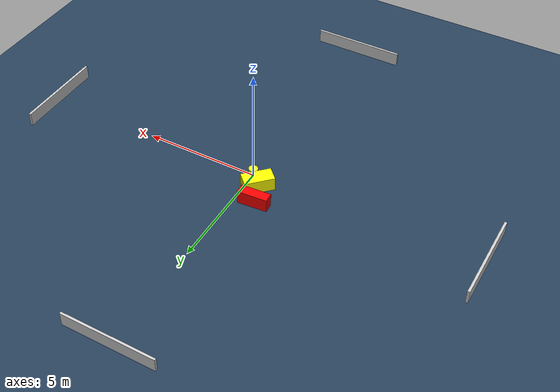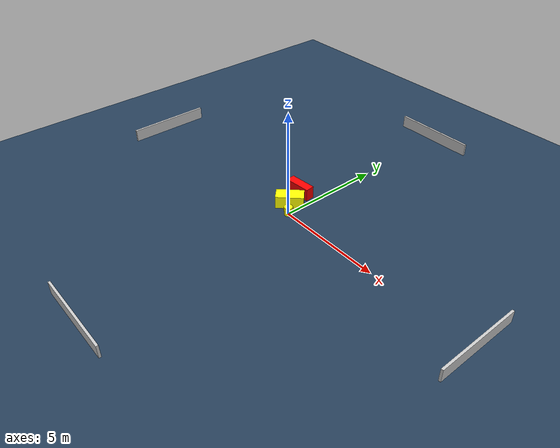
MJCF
<?xml version="1.0" ?>
<mujoco model="generated_environment">
  <option timestep="0.01" integrator="RK4" cone="elliptic"/>
  <default>
    <geom density="1"/>
  </default>
  <asset>
    <texture builtin="gradient" height="3072" name="skybox" rgb1="0.3 0.5 0.7" rgb2="0 0 0" type="skybox" width="512"/>
    <texture builtin="checker" height="300" name="groundplane" rgb1="0.2 0.3 0.4" rgb2="0.1 0.2 0.3" type="2d" width="300"/>
    <material name="groundplane" reflectance="0.2" texrepeat="5 5" texture="groundplane"/>
  </asset>
  <worldbody>
    <light dir="0 0 -1" directional="true" pos="0 0 1.5"/>
    <geom condim="3" friction="0.5 0.005 0.001" material="groundplane" name="floor" pos="0 0 0" size="0 0 0.05" type="plane"/>
    <body name="walls">
      <geom name="wall_1" condim="4" pos="-10.0 0.0 0.3" rgba="0.800000011920929 0.800000011920929 0.800000011920929 1.0" size="0.05 2.0 0.3" type="box"/>
      <geom name="wall_2" condim="4" pos="10.0 0.0 0.3" rgba="0.800000011920929 0.800000011920929 0.800000011920929 1.0" size="0.05 2.0 0.3" type="box"/>
      <geom name="wall_3" condim="4" pos="0.0 -10.0 0.3" rgba="0.800000011920929 0.800000011920929 0.800000011920929 1.0" size="2.0 0.05 0.3" type="box"/>
      <geom name="wall_4" condim="4" pos="0.0 10.0 0.3" rgba="0.800000011920929 0.800000011920929 0.800000011920929 1.0" size="2.0 0.05 0.3" type="box"/>
    </body>
    <body name="robot">
      <joint name="joint_x" type="slide" pos="0 0 0" axis="1 0 0"/>
      <joint name="joint_y" type="slide" pos="0 0 0" axis="0 1 0"/>
      <geom name="robot" type="cylinder" pos="0.0 0.0 0.2" size="0.2 0.2 0.0" mass="5.0" friction="1.0 0.005 0.0001" condim="4" rgba="1.0 1.0 0.0 1.0"/>
    </body>
    <body name="obstacle_1_movable">
      <geom name="obstacle_1_movable" condim="4" pos="-0.5015058325284143 0.5119758487739495 0.3" euler="0 0 45.70701489900175" friction="0.0 0.005 0.001" rgba="1.0 1.0 0.0 1.0" size="0.6415179772858444 0.3243716195853511 0.3" type="box" mass="0.1"/>
      <joint type="free"/>
    </body>
    <body name="obstacle_2_static">
      <geom name="obstacle_2_static" condim="4" pos="-0.8464881871794848 1.4168359386581972 0.3" euler="0 0 4.687529353629221" friction="0.0 0.005 0.001" rgba="1.0 0.0 0.0 1.0" size="0.6381155735560222 0.21378360442410582 0.3" type="box"/>
    </body>
  </worldbody>
  <actuator>
    <motor name="actuator_x" joint="joint_x" gear="1" ctrlrange="-1 1"/>
    <motor name="actuator_y" joint="joint_y" gear="1" ctrlrange="-1 1"/>
  </actuator>
</mujoco>
